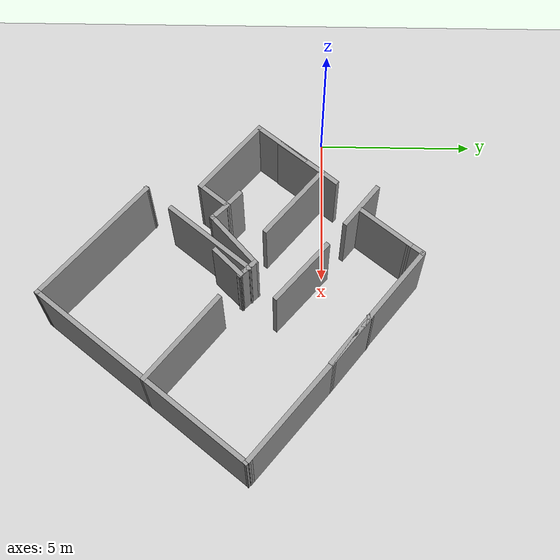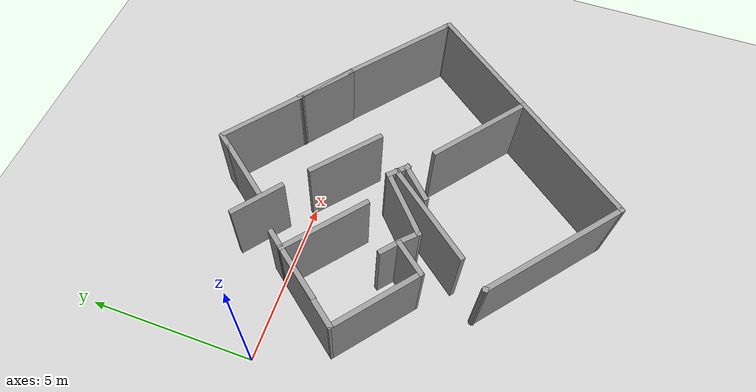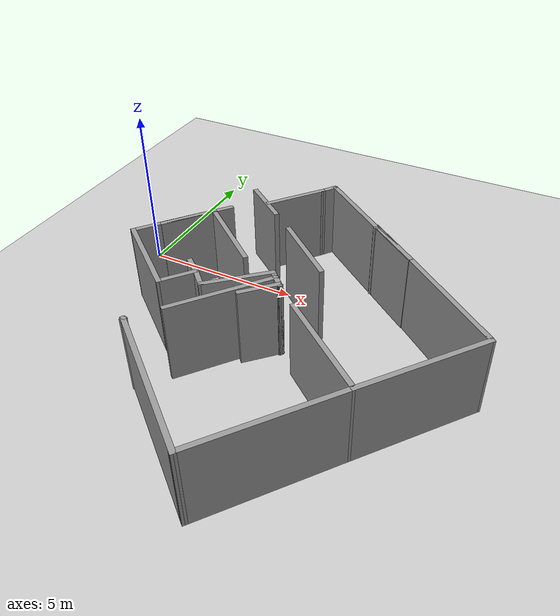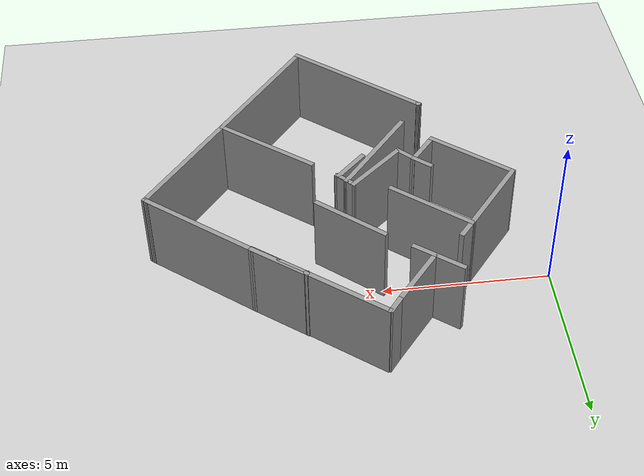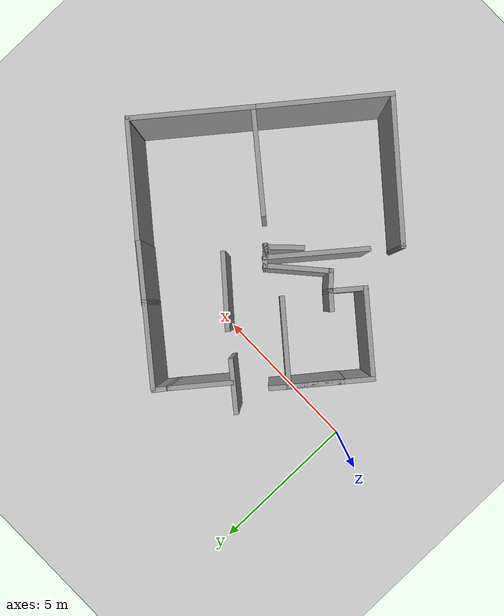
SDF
<sdf version="1.7">
 <world name="default">
  <light name="sun" type="directional">
   <pose>0 0 10 0 -0 0</pose>
   <diffuse>0.8 0.8 0.8 1</diffuse>
   <specular>0.2 0.2 0.2 1</specular>
   <attenuation>
    <range>1000</range>
    <constant>0.9</constant>
    <linear>0.01</linear>
    <quadratic>0.001</quadratic>
   </attenuation>
   <direction>-0.5 0.1 -0.9</direction>
   <spot><inner_angle>0</inner_angle><outer_angle>0</outer_angle><falloff>0</falloff></spot>
  </light>
  <model name="ground_plane">
   <static>1</static>
   <link name="link">
    <collision name="collision">
     <geometry><plane><normal>0 0 1</normal><size>100 100</size></plane></geometry>
     <surface>
      <contact><collide_bitmask>65535</collide_bitmask></contact>
      <friction><ode><mu>100</mu><mu2>50</mu2></ode></friction>
     </surface>
    </collision>
    <visual name="visual">
     <cast_shadows>0</cast_shadows>
     <geometry><plane><normal>0 0 1</normal><size>100 100</size></plane></geometry>
     <material>
      <script><uri>file://media/materials/scripts/gazebo.material</uri><name>Gazebo/Grey</name></script>
     </material>
    </visual>
   </link>
  </model>
  <gravity>0 0 -9.8</gravity>
  <magnetic_field>6e-06 2.3e-05 -4.2e-05</magnetic_field>
  <atmosphere type="adiabatic"/>
  <physics type="ode">
   <max_step_size>0.001</max_step_size>
   <real_time_factor>1</real_time_factor>
   <real_time_update_rate>1000</real_time_update_rate>
  </physics>
  <scene><ambient>0.4 0.4 0.4 1</ambient><background>0.7 0.7 0.7 1</background><shadows>1</shadows></scene>
  <audio><device>default</device></audio>
  <spherical_coordinates>
   <surface_model>EARTH_WGS84</surface_model>
   <latitude_deg>0</latitude_deg>
   <longitude_deg>0</longitude_deg>
   <elevation>0</elevation>
   <heading_deg>0</heading_deg>
  </spherical_coordinates>
  <model name="workshop_sim_world">
   <pose>5.88088 -2.75252 0 0 -0 0</pose>
   <link name="Wall_10">
    <collision name="Wall_10_Collision">
     <geometry><box><size>2.75844 0.15 2.5</size></box></geometry>
     <pose>0 0 1.25 0 -0 0</pose>
    </collision>
    <visual name="Wall_10_Visual">
     <pose>0 0 1.25 0 -0 0</pose>
     <geometry><box><size>2.75844 0.15 2.5</size></box></geometry>
     <material>
      <script><uri>file://media/materials/scripts/gazebo.material</uri><name>Gazebo/Grey</name></script>
      <ambient>1 1 1 1</ambient>
     </material>
     <meta><layer>0</layer></meta>
    </visual>
    <pose>0.402683 4.86702 0 0 -0 2.47497</pose>
   </link>
   <link name="Wall_13">
    <collision name="Wall_13_Collision">
     <geometry><box><size>0.15 0.15 2.5</size></box></geometry>
     <pose>0 0 1.25 0 -0 0</pose>
    </collision>
    <visual name="Wall_13_Visual">
     <pose>0 0 1.25 0 -0 0</pose>
     <geometry><box><size>0.15 0.15 2.5</size></box></geometry>
     <material>
      <script><uri>file://media/materials/scripts/gazebo.material</uri><name>Gazebo/Grey</name></script>
      <ambient>1 1 1 1</ambient>
     </material>
     <meta><layer>0</layer></meta>
    </visual>
    <pose>1.42768 4.06057 0 0 -0 0</pose>
   </link>
   <link name="Wall_17">
    <collision name="Wall_17_Collision">
     <geometry><box><size>1.94568 0.15 2.5</size></box></geometry>
     <pose>0 0 1.25 0 -0 0</pose>
    </collision>
    <visual name="Wall_17_Visual">
     <pose>0 0 1.25 0 -0 0</pose>
     <geometry><box><size>1.94568 0.15 2.5</size></box></geometry>
     <material>
      <script><uri>file://media/materials/scripts/gazebo.material</uri><name>Gazebo/Grey</name></script>
      <ambient>1 1 1 1</ambient>
     </material>
     <meta><layer>0</layer></meta>
    </visual>
    <pose>2.13566 3.50841 0 0 -0 2.47922</pose>
   </link>
   <link name="Wall_18">
    <collision name="Wall_18_Collision">
     <geometry><box><size>1.94568 0.15 2.5</size></box></geometry>
     <pose>0 0 1.25 0 -0 0</pose>
    </collision>
    <visual name="Wall_18_Visual">
     <pose>0 0 1.25 0 -0 0</pose>
     <geometry><box><size>1.94568 0.15 2.5</size></box></geometry>
     <material>
      <script><uri>file://media/materials/scripts/gazebo.material</uri><name>Gazebo/Grey</name></script>
      <ambient>1 1 1 1</ambient>
     </material>
     <meta><layer>0</layer></meta>
    </visual>
    <pose>2.13566 3.53486 0 0 -0 -0.662369</pose>
   </link>
   <link name="Wall_20">
    <collision name="Wall_20_Collision">
     <geometry><box><size>2.8187 0.15 2.5</size></box></geometry>
     <pose>0 0 1.25 0 -0 0</pose>
    </collision>
    <visual name="Wall_20_Visual">
     <pose>0 0 1.25 0 -0 0</pose>
     <geometry><box><size>2.8187 0.15 2.5</size></box></geometry>
     <material>
      <script><uri>file://media/materials/scripts/gazebo.material</uri><name>Gazebo/Grey</name></script>
      <ambient>1 1 1 1</ambient>
     </material>
     <meta><layer>0</layer></meta>
    </visual>
    <pose>-2.3896 1.83386 0 0 -0 2.45447</pose>
   </link>
   <link name="Wall_23">
    <collision name="Wall_23_Collision">
     <geometry><box><size>3.82839 0.15 2.5</size></box></geometry>
     <pose>0 0 1.25 0 -0 0</pose>
    </collision>
    <visual name="Wall_23_Visual">
     <pose>0 0 1.25 0 -0 0</pose>
     <geometry><box><size>3.82839 0.15 2.5</size></box></geometry>
     <material>
      <script><uri>file://media/materials/scripts/gazebo.material</uri><name>Gazebo/Grey</name></script>
      <ambient>1 1 1 1</ambient>
     </material>
     <meta><layer>0</layer></meta>
    </visual>
    <pose>4.27387 1.82638 0 0 -0 -0.679893</pose>
   </link>
   <link name="Wall_24">
    <collision name="Wall_24_Collision">
     <geometry><box><size>0.25 0.15 2.5</size></box></geometry>
     <pose>0 0 1.25 0 -0 0</pose>
    </collision>
    <visual name="Wall_24_Visual">
     <pose>0 0 1.25 0 -0 0</pose>
     <geometry><box><size>0.25 0.15 2.5</size></box></geometry>
     <material>
      <script><uri>file://media/materials/scripts/gazebo.material</uri><name>Gazebo/Grey</name></script>
      <ambient>1 1 1 1</ambient>
     </material>
     <meta><layer>0</layer></meta>
    </visual>
    <pose>5.73946 0.634705 0 0 -0 -0.785398</pose>
   </link>
   <link name="Wall_25">
    <collision name="Wall_25_Collision">
     <geometry><box><size>3.95168 0.15 2.5</size></box></geometry>
     <pose>0 0 1.25 0 -0 0</pose>
    </collision>
    <visual name="Wall_25_Visual">
     <pose>0 0 1.25 0 -0 0</pose>
     <geometry><box><size>3.95168 0.15 2.5</size></box></geometry>
     <material>
      <script><uri>file://media/materials/scripts/gazebo.material</uri><name>Gazebo/Grey</name></script>
      <ambient>1 1 1 1</ambient>
     </material>
     <meta><layer>0</layer></meta>
    </visual>
    <pose>4.58888 -0.88617 0 0 -0 -2.24452</pose>
   </link>
   <link name="Wall_26">
    <collision name="Wall_26_Collision">
     <geometry><box><size>3.38859 0.15 2.5</size></box></geometry>
     <pose>0 0 1.25 0 -0 0</pose>
    </collision>
    <visual name="Wall_26_Visual">
     <pose>0 0 1.25 0 -0 0</pose>
     <geometry><box><size>3.38859 0.15 2.5</size></box></geometry>
     <material>
      <script><uri>file://media/materials/scripts/gazebo.material</uri><name>Gazebo/Grey</name></script>
      <ambient>1 1 1 1</ambient>
     </material>
     <meta><layer>0</layer></meta>
    </visual>
    <pose>2.13335 -1.36659 0 0 -0 2.47195</pose>
   </link>
   <link name="Wall_271">
    <collision name="Wall_271_Collision">
     <geometry><box><size>0.708856 0.15 2.5</size></box></geometry>
     <pose>0 0 1.25 0 -0 0</pose>
    </collision>
    <visual name="Wall_271_Visual">
     <pose>0 0 1.25 0 -0 0</pose>
     <geometry><box><size>0.708856 0.15 2.5</size></box></geometry>
     <material>
      <script><uri>file://media/materials/scripts/gazebo.material</uri><name>Gazebo/Grey</name></script>
      <ambient>1 1 1 1</ambient>
     </material>
     <meta><layer>0</layer></meta>
    </visual>
    <pose>-2.4233 -0.041345 0 0 -0 2.44107</pose>
   </link>
   <link name="Wall_273">
    <collision name="Wall_273_Collision">
     <geometry><box><size>0.18927 0.15 2.5</size></box></geometry>
     <pose>0 0 1.25 0 -0 0</pose>
    </collision>
    <visual name="Wall_273_Visual">
     <pose>0 0 1.25 0 -0 0</pose>
     <geometry><box><size>0.18927 0.15 2.5</size></box></geometry>
     <material>
      <script><uri>file://media/materials/scripts/gazebo.material</uri><name>Gazebo/Grey</name></script>
      <ambient>1 1 1 1</ambient>
     </material>
     <meta><layer>0</layer></meta>
    </visual>
    <pose>0.11682 0.262746 0 0 -0 2.78518</pose>
   </link>
   <link name="Wall_274">
    <collision name="Wall_274_Collision">
     <geometry><box><size>1.25 0.15 2.5</size></box></geometry>
     <pose>0 0 1.25 0 -0 0</pose>
    </collision>
    <visual name="Wall_274_Visual">
     <pose>0 0 1.25 0 -0 0</pose>
     <geometry><box><size>1.25 0.15 2.5</size></box></geometry>
     <material>
      <script><uri>file://media/materials/scripts/gazebo.material</uri><name>Gazebo/Grey</name></script>
      <ambient>1 1 1 1</ambient>
     </material>
     <meta><layer>0</layer></meta>
    </visual>
    <pose>-0.29049 -0.119312 0 0 -0 -2.35619</pose>
   </link>
   <link name="Wall_28">
    <collision name="Wall_28_Collision">
     <geometry><box><size>4.37342 0.15 2.5</size></box></geometry>
     <pose>0 0 1.25 0 -0 0</pose>
    </collision>
    <visual name="Wall_28_Visual">
     <pose>0 0 1.25 0 -0 0</pose>
     <geometry><box><size>4.37342 0.15 2.5</size></box></geometry>
     <material>
      <script><uri>file://media/materials/scripts/gazebo.material</uri><name>Gazebo/Grey</name></script>
      <ambient>1 1 1 1</ambient>
     </material>
     <meta><layer>0</layer></meta>
    </visual>
    <pose>2.09147 -4.02678 0 0 -0 -2.24088</pose>
   </link>
   <link name="Wall_282">
    <collision name="Wall_282_Collision">
     <geometry><box><size>2.43918 0.15 2.5</size></box></geometry>
     <pose>0 0 1.25 0 -0 0</pose>
    </collision>
    <visual name="Wall_282_Visual">
     <pose>0 0 1.25 0 -0 0</pose>
     <geometry><box><size>2.43918 0.15 2.5</size></box></geometry>
     <material>
      <script><uri>file://media/materials/scripts/gazebo.material</uri><name>Gazebo/Grey</name></script>
      <ambient>1 1 1 1</ambient>
     </material>
     <meta><layer>0</layer></meta>
    </visual>
    <pose>-0.020595 2.07922 0 0 -0 -0.704494</pose>
   </link>
   <link name="Wall_284">
    <collision name="Wall_284_Collision">
     <geometry><box><size>0.698394 0.15 2.5</size></box></geometry>
     <pose>0 0 1.25 0 -0 0</pose>
    </collision>
    <visual name="Wall_284_Visual">
     <pose>0 0 1.25 0 -0 0</pose>
     <geometry><box><size>0.698394 0.15 2.5</size></box></geometry>
     <material>
      <script><uri>file://media/materials/scripts/gazebo.material</uri><name>Gazebo/Grey</name></script>
      <ambient>1 1 1 1</ambient>
     </material>
     <meta><layer>0</layer></meta>
    </visual>
    <pose>-3.24706 2.89211 0 0 -0 0.882936</pose>
   </link>
   <link name="Wall_29">
    <collision name="Wall_29_Collision">
     <geometry><box><size>4.74482 0.15 2.5</size></box></geometry>
     <pose>0 0 1.25 0 -0 0</pose>
    </collision>
    <visual name="Wall_29_Visual">
     <pose>0 0 1.25 0 -0 0</pose>
     <geometry><box><size>4.74482 0.15 2.5</size></box></geometry>
     <material>
      <script><uri>file://media/materials/scripts/gazebo.material</uri><name>Gazebo/Grey</name></script>
      <ambient>1 1 1 1</ambient>
     </material>
     <meta><layer>0</layer></meta>
    </visual>
    <pose>-0.981831 -4.20739 0 0 -0 2.44475</pose>
   </link>
   <link name="Wall_30">
    <collision name="Wall_30_Collision">
     <geometry><box><size>0.15 0.15 2.5</size></box></geometry>
     <pose>0 0 1.25 0 -0 0</pose>
    </collision>
    <visual name="Wall_30_Visual">
     <pose>0 0 1.25 0 -0 0</pose>
     <geometry><box><size>0.15 0.15 2.5</size></box></geometry>
     <material>
      <script><uri>file://media/materials/scripts/gazebo.material</uri><name>Gazebo/Grey</name></script>
      <ambient>1 1 1 1</ambient>
     </material>
     <meta><layer>0</layer></meta>
    </visual>
    <pose>-2.74365 -2.73291 0 0 -0 0</pose>
   </link>
   <link name="Wall_32">
    <collision name="Wall_32_Collision">
     <geometry><box><size>3.26766 0.15 2.5</size></box></geometry>
     <pose>0 0 1.25 0 -0 0</pose>
    </collision>
    <visual name="Wall_32_Visual">
     <pose>0 0 1.25 0 -0 0</pose>
     <geometry><box><size>3.26766 0.15 2.5</size></box></geometry>
     <material>
      <script><uri>file://media/materials/scripts/gazebo.material</uri><name>Gazebo/Grey</name></script>
      <ambient>1 1 1 1</ambient>
     </material>
     <meta><layer>0</layer></meta>
    </visual>
    <pose>-1.09525 -0.706448 0 0 -0 0.88848</pose>
   </link>
   <link name="Wall_34">
    <collision name="Wall_34_Collision">
     <geometry><box><size>0.15 0.15 2.5</size></box></geometry>
     <pose>0 0 1.25 0 -0 0</pose>
    </collision>
    <visual name="Wall_34_Visual">
     <pose>0 0 1.25 0 -0 0</pose>
     <geometry><box><size>0.15 0.15 2.5</size></box></geometry>
     <material>
      <script><uri>file://media/materials/scripts/gazebo.material</uri><name>Gazebo/Grey</name></script>
      <ambient>1 1 1 1</ambient>
     </material>
     <meta><layer>0</layer></meta>
    </visual>
    <pose>-0.112266 0.503382 0 0 -0 0</pose>
   </link>
   <link name="Wall_36">
    <collision name="Wall_36_Collision">
     <geometry><box><size>0.5 0.15 2.5</size></box></geometry>
     <pose>0 0 1.25 0 -0 0</pose>
    </collision>
    <visual name="Wall_36_Visual">
     <pose>0 0 1.25 0 -0 0</pose>
     <geometry><box><size>0.5 0.15 2.5</size></box></geometry>
     <material>
      <script><uri>file://media/materials/scripts/gazebo.material</uri><name>Gazebo/Grey</name></script>
      <ambient>1 1 1 1</ambient>
     </material>
     <meta><layer>0</layer></meta>
    </visual>
    <pose>0.011477 0.379638 0 0 -0 -0.785398</pose>
   </link>
   <link name="Wall_37">
    <collision name="Wall_37_Collision">
     <geometry><box><size>0.75 0.15 2.5</size></box></geometry>
     <pose>0 0 1.25 0 -0 0</pose>
    </collision>
    <visual name="Wall_37_Visual">
     <pose>0 0 1.25 0 -0 0</pose>
     <geometry><box><size>0.75 0.15 2.5</size></box></geometry>
     <material>
      <script><uri>file://media/materials/scripts/gazebo.material</uri><name>Gazebo/Grey</name></script>
      <ambient>1 1 1 1</ambient>
     </material>
     <meta><layer>0</layer></meta>
    </visual>
    <pose>-0.07691 0.468027 0 0 -0 2.35619</pose>
   </link>
   <link name="Wall_39">
    <collision name="Wall_39_Collision">
     <geometry><box><size>1.78743 0.15 2.5</size></box></geometry>
     <pose>0 0 1.25 0 -0 0</pose>
    </collision>
    <visual name="Wall_39_Visual">
     <pose>0 0 1.25 0 -0 0</pose>
     <geometry><box><size>1.78743 0.15 2.5</size></box></geometry>
     <material>
      <script><uri>file://media/materials/scripts/gazebo.material</uri><name>Gazebo/Grey</name></script>
      <ambient>1 1 1 1</ambient>
     </material>
     <meta><layer>0</layer></meta>
    </visual>
    <pose>-3.92565 2.03546 0 0 -0 0.906868</pose>
   </link>
   <link name="Wall_40">
    <collision name="Wall_40_Collision">
     <geometry><box><size>2.69467 0.15 2.5</size></box></geometry>
     <pose>0 0 1.25 0 -0 0</pose>
    </collision>
    <visual name="Wall_40_Visual">
     <pose>0 0 1.25 0 -0 0</pose>
     <geometry><box><size>2.69467 0.15 2.5</size></box></geometry>
     <material>
      <script><uri>file://media/materials/scripts/gazebo.material</uri><name>Gazebo/Grey</name></script>
      <ambient>1 1 1 1</ambient>
     </material>
     <meta><layer>0</layer></meta>
    </visual>
    <pose>-4.21462 1.68566 0 0 -0 -2.24418</pose>
   </link>
   <link name="Wall_41">
    <collision name="Wall_41_Collision">
     <geometry><box><size>2.89584 0.15 2.5</size></box></geometry>
     <pose>0 0 1.25 0 -0 0</pose>
    </collision>
    <visual name="Wall_41_Visual">
     <pose>0 0 1.25 0 -0 0</pose>
     <geometry><box><size>2.89584 0.15 2.5</size></box></geometry>
     <material>
      <script><uri>file://media/materials/scripts/gazebo.material</uri><name>Gazebo/Grey</name></script>
      <ambient>1 1 1 1</ambient>
     </material>
     <meta><layer>0</layer></meta>
    </visual>
    <pose>-3.94347 -0.175844 0 0 -0 -0.683391</pose>
   </link>
   <link name="Wall_42">
    <collision name="Wall_42_Collision">
     <geometry><box><size>1.20938 0.15 2.5</size></box></geometry>
     <pose>0 0 1.25 0 -0 0</pose>
    </collision>
    <visual name="Wall_42_Visual">
     <pose>0 0 1.25 0 -0 0</pose>
     <geometry><box><size>1.20938 0.15 2.5</size></box></geometry>
     <material>
      <script><uri>file://media/materials/scripts/gazebo.material</uri><name>Gazebo/Grey</name></script>
      <ambient>1 1 1 1</ambient>
     </material>
     <meta><layer>0</layer></meta>
    </visual>
    <pose>-2.54427 -0.632106 0 0 -0 0.887087</pose>
   </link>
   <link name="Wall_43">
    <collision name="Wall_43_Collision">
     <geometry><box><size>0.75 0.15 2.5</size></box></geometry>
     <pose>0 0 1.25 0 -0 0</pose>
    </collision>
    <visual name="Wall_43_Visual">
     <pose>0 0 1.25 0 -0 0</pose>
     <geometry><box><size>0.75 0.15 2.5</size></box></geometry>
     <material>
      <script><uri>file://media/materials/scripts/gazebo.material</uri><name>Gazebo/Grey</name></script>
      <ambient>1 1 1 1</ambient>
     </material>
     <meta><layer>0</layer></meta>
    </visual>
    <pose>-1.99755 -0.433602 0 0 -0 -0.785398</pose>
   </link>
   <link name="Wall_44">
    <collision name="Wall_44_Collision">
     <geometry><box><size>2.14928 0.15 2.5</size></box></geometry>
     <pose>0 0 1.25 0 -0 0</pose>
    </collision>
    <visual name="Wall_44_Visual">
     <pose>0 0 1.25 0 -0 0</pose>
     <geometry><box><size>2.14928 0.15 2.5</size></box></geometry>
     <material>
      <script><uri>file://media/materials/scripts/gazebo.material</uri><name>Gazebo/Grey</name></script>
      <ambient>1 1 1 1</ambient>
     </material>
     <meta><layer>0</layer></meta>
    </visual>
    <pose>-1.03723 0.017212 0 0 -0 0.725067</pose>
   </link>
   <link name="Wall_5">
    <collision name="Wall_5_Collision">
     <geometry><box><size>1.69625 0.15 2.5</size></box></geometry>
     <pose>0 0 1.25 0 -0 0</pose>
    </collision>
    <visual name="Wall_5_Visual">
     <pose>0 0 1.25 0 -0 0</pose>
     <geometry><box><size>1.69625 0.15 2.5</size></box></geometry>
     <material>
      <script><uri>file://media/materials/scripts/gazebo.material</uri><name>Gazebo/Grey</name></script>
      <ambient>1 1 1 1</ambient>
     </material>
     <meta><layer>0</layer></meta>
    </visual>
    <pose>-2.26088 3.88752 0 0 -0 -0.66161</pose>
   </link>
   <link name="Wall_7">
    <collision name="Wall_7_Collision">
     <geometry><box><size>2.03502 0.15 2.5</size></box></geometry>
     <pose>0 0 1.25 0 -0 0</pose>
    </collision>
    <visual name="Wall_7_Visual">
     <pose>0 0 1.25 0 -0 0</pose>
     <geometry><box><size>2.03502 0.15 2.5</size></box></geometry>
     <material>
      <script><uri>file://media/materials/scripts/gazebo.material</uri><name>Gazebo/Grey</name></script>
      <ambient>1 1 1 1</ambient>
     </material>
     <meta><layer>0</layer></meta>
    </visual>
    <pose>-1.54088 4.58752 0 0 -0 0.894398</pose>
   </link>
   <link name="Wall_8">
    <collision name="Wall_8_Collision">
     <geometry><box><size>0.6 0.15 2.5</size></box></geometry>
     <pose>0 0 1.25 0 -0 0</pose>
    </collision>
    <visual name="Wall_8_Visual">
     <pose>0 0 1.25 0 -0 0</pose>
     <geometry><box><size>0.6 0.15 2.5</size></box></geometry>
     <material>
      <script><uri>file://media/materials/scripts/gazebo.material</uri><name>Gazebo/Grey</name></script>
      <ambient>1 1 1 1</ambient>
     </material>
     <meta><layer>0</layer></meta>
    </visual>
    <pose>-0.81588 5.50252 0 0 -0 0.927295</pose>
   </link>
   <static>1</static>
  </model>
 </world>
</sdf>
